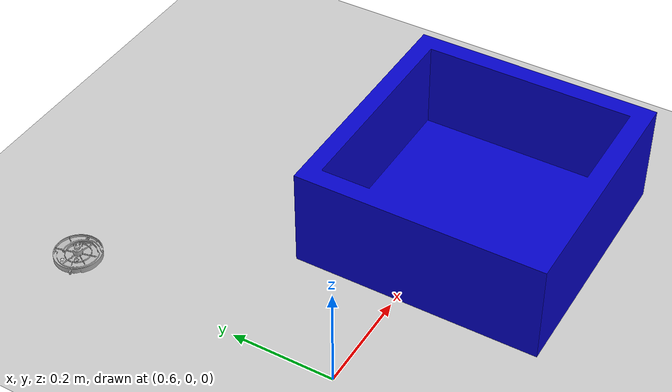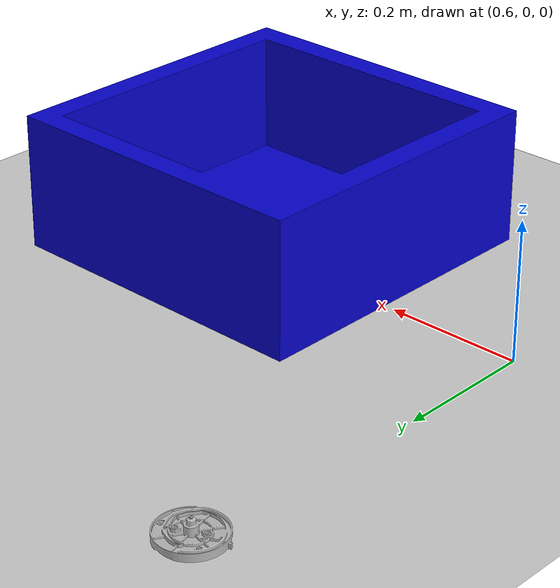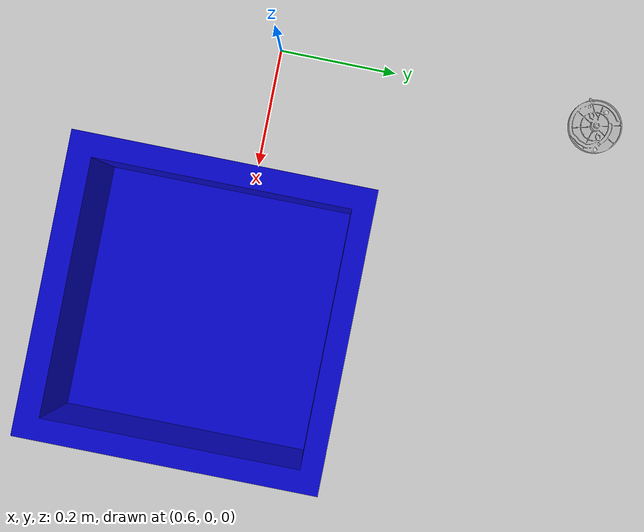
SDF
<sdf version="1.7">
 <world name="default">
  <light name="sun" type="directional">
   <pose>0 0 10 0 -0 0</pose>
   <diffuse>0.8 0.8 0.8 1</diffuse>
   <specular>0.2 0.2 0.2 1</specular>
   <attenuation>
    <range>1000</range>
    <constant>0.9</constant>
    <linear>0.01</linear>
    <quadratic>0.001</quadratic>
   </attenuation>
   <direction>-0.5 0.1 -0.9</direction>
   <spot><inner_angle>0</inner_angle><outer_angle>0</outer_angle><falloff>0</falloff></spot>
  </light>
  <model name="ground_plane">
   <static>1</static>
   <link name="link">
    <collision name="collision">
     <geometry><plane><normal>0 0 1</normal><size>100 100</size></plane></geometry>
     <surface><friction><ode><mu>100</mu><mu2>50</mu2></ode></friction></surface>
    </collision>
    <visual name="visual">
     <cast_shadows>0</cast_shadows>
     <geometry><plane><normal>0 0 1</normal><size>100 100</size></plane></geometry>
     <material>
      <script><uri>file://media/materials/scripts/gazebo.material</uri><name>Gazebo/Grey</name></script>
     </material>
    </visual>
   </link>
  </model>
  <gravity>0 0 -9.8</gravity>
  <magnetic_field>6e-06 2.3e-05 -4.2e-05</magnetic_field>
  <atmosphere type="adiabatic"/>
  <physics type="ode">
   <max_step_size>0.001</max_step_size>
   <real_time_factor>1</real_time_factor>
   <real_time_update_rate>1000</real_time_update_rate>
  </physics>
  <scene><ambient>0.4 0.4 0.4 1</ambient><background>0.7 0.7 0.7 1</background><shadows>1</shadows></scene>
  <spherical_coordinates>
   <surface_model>EARTH_WGS84</surface_model>
   <latitude_deg>0</latitude_deg>
   <longitude_deg>0</longitude_deg>
   <elevation>0</elevation>
   <heading_deg>0</heading_deg>
  </spherical_coordinates>
  <model name="HV8_0">
   <pose>0.62315 0.552433 -3e-06 -4e-06 5.8e-05 2.04701</pose>
   <static>0</static>
   <link name="HV8">
    <inertial>
     <mass>0.2</mass>
     <inertia><ixx>0.0005</ixx><ixy>0</ixy><ixz>0</ixz><iyy>0.0005</iyy><iyz>0</iyz><izz>0.0005</izz></inertia>
    </inertial>
    <collision name="collishin">
     <geometry><mesh><uri>model://HV8/meshes/HV8_1.stl</uri></mesh></geometry>
    </collision>
    <visual name="visual"><geometry><mesh><uri>model://HV8/meshes/HV8_1.stl</uri></mesh></geometry></visual>
   </link>
  </model>
  <model name="object_box">
   <pose>1.05636 -0.034898 0 0 -0 0</pose>
   <static>1</static>
   <link name="object_box">
    <inertial>
     <mass>0.2</mass>
     <inertia><ixx>0.0005</ixx><ixy>0</ixy><ixz>0</ixz><iyy>0.0005</iyy><iyz>0</iyz><izz>0.0005</izz></inertia>
    </inertial>
    <collision name="collision">
     <geometry><mesh><uri>model://object_box/meshed/object_box_kai.dae</uri></mesh></geometry>
    </collision>
    <visual name="visual">
     <geometry><mesh><uri>model://object_box/meshed/object_box_kai.dae</uri></mesh></geometry>
    </visual>
   </link>
  </model>
 </world>
</sdf>
